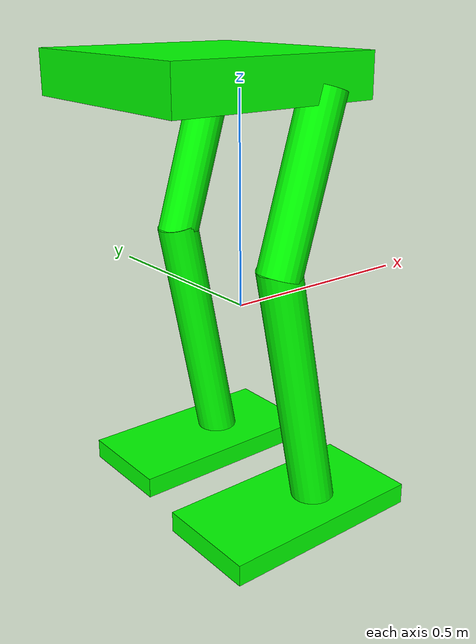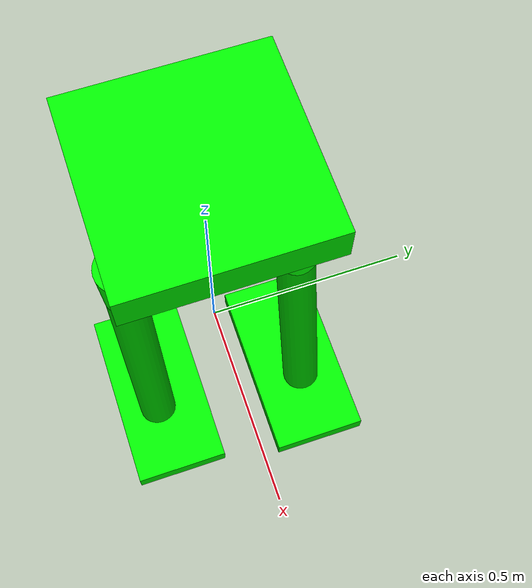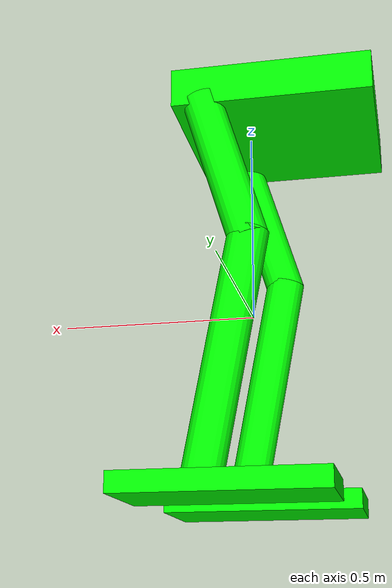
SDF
<?xml version='1.0'?>
<sdf version='1.7'>
  <model name='HumanoidRobot'>
    <link name='link_0'>
      <inertial>
        <mass>1</mass>
        <inertia>
          <ixx>0.166667</ixx>
          <ixy>0</ixy>
          <ixz>0</ixz>
          <iyy>0.166667</iyy>
          <iyz>0</iyz>
          <izz>0.166667</izz>
        </inertia>
        <pose>0 0 0 0 -0 0</pose>
      </inertial>
      <pose>-0.088426 0.010705 0.536121 0 -0 0</pose>
      <gravity>1</gravity>
      <self_collide>0</self_collide>
      <kinematic>0</kinematic>
      <enable_wind>0</enable_wind>
      <visual name='visual'>
        <pose>0 0 0 0 -0 0</pose>
        <geometry>
          <box>
            <size>0.5 0.5 0.1</size>
          </box>
        </geometry>
        <material>
          <lighting>1</lighting>
          <script>
            <uri>file://media/materials/scripts/gazebo.material</uri>
            <name>Gazebo/Grey</name>
          </script>
          <shader type='pixel'>
            <normal_map>__default__</normal_map>
          </shader>
          <ambient>0 1 0 1</ambient>
          <diffuse>0.7 0.7 0.7 1</diffuse>
          <specular>0.01 0.01 0.01 1</specular>
          <emissive>0 0 0 1</emissive>
        </material>
        <transparency>0</transparency>
        <cast_shadows>1</cast_shadows>
      </visual>
      <collision name='collision'>
        <laser_retro>0</laser_retro>
        <max_contacts>10</max_contacts>
        <pose>0 0 0 0 -0 0</pose>
        <geometry>
          <box>
            <size>0.5 0.5 0.1</size>
          </box>
        </geometry>
        <surface>
          <friction>
            <ode>
              <mu>1</mu>
              <mu2>1</mu2>
              <fdir1>0 0 0</fdir1>
              <slip1>0</slip1>
              <slip2>0</slip2>
            </ode>
            <torsional>
              <coefficient>1</coefficient>
              <patch_radius>0</patch_radius>
              <surface_radius>0</surface_radius>
              <use_patch_radius>1</use_patch_radius>
              <ode>
                <slip>0</slip>
              </ode>
            </torsional>
          </friction>
          <bounce>
            <restitution_coefficient>0</restitution_coefficient>
            <threshold>1e+06</threshold>
          </bounce>
          <contact>
            <collide_without_contact>0</collide_without_contact>
            <collide_without_contact_bitmask>1</collide_without_contact_bitmask>
            <collide_bitmask>1</collide_bitmask>
            <ode>
              <soft_cfm>0</soft_cfm>
              <soft_erp>0.2</soft_erp>
              <kp>1e+13</kp>
              <kd>1</kd>
              <max_vel>0.01</max_vel>
              <min_depth>0</min_depth>
            </ode>
            <bullet>
              <split_impulse>1</split_impulse>
              <split_impulse_penetration_threshold>-0.01</split_impulse_penetration_threshold>
              <soft_cfm>0</soft_cfm>
              <soft_erp>0.2</soft_erp>
              <kp>1e+13</kp>
              <kd>1</kd>
            </bullet>
          </contact>
        </surface>
      </collision>
    </link>
    <link name='link_1'>
      <inertial>
        <mass>1</mass>
        <inertia>
          <ixx>0.166667</ixx>
          <ixy>0</ixy>
          <ixz>0</ixz>
          <iyy>0.166667</iyy>
          <iyz>0</iyz>
          <izz>0.166667</izz>
        </inertia>
        <pose>0 0 0 0 -0 0</pose>
      </inertial>
      <pose>-0.002836 -0.189031 -0.453961 0 -0 0</pose>
      <gravity>1</gravity>
      <self_collide>0</self_collide>
      <kinematic>0</kinematic>
      <enable_wind>0</enable_wind>
      <visual name='visual'>
        <pose>0 0 0 0 -0 0</pose>
        <geometry>
          <box>
            <size>0.5 0.25 0.05</size>
          </box>
        </geometry>
        <material>
          <lighting>1</lighting>
          <script>
            <uri>file://media/materials/scripts/gazebo.material</uri>
            <name>Gazebo/Grey</name>
          </script>
          <shader type='pixel'>
            <normal_map>__default__</normal_map>
          </shader>
          <ambient>0 1 0 1</ambient>
          <diffuse>0.7 0.7 0.7 1</diffuse>
          <specular>0.01 0.01 0.01 1</specular>
          <emissive>0 0 0 1</emissive>
        </material>
        <transparency>0</transparency>
        <cast_shadows>1</cast_shadows>
      </visual>
      <collision name='collision'>
        <laser_retro>0</laser_retro>
        <max_contacts>10</max_contacts>
        <pose>0 0 0 0 -0 0</pose>
        <geometry>
          <box>
            <size>0.5 0.25 0.05</size>
          </box>
        </geometry>
        <surface>
          <friction>
            <ode>
              <mu>1</mu>
              <mu2>1</mu2>
              <fdir1>0 0 0</fdir1>
              <slip1>0</slip1>
              <slip2>0</slip2>
            </ode>
            <torsional>
              <coefficient>1</coefficient>
              <patch_radius>0</patch_radius>
              <surface_radius>0</surface_radius>
              <use_patch_radius>1</use_patch_radius>
              <ode>
                <slip>0</slip>
              </ode>
            </torsional>
          </friction>
          <bounce>
            <restitution_coefficient>0</restitution_coefficient>
            <threshold>1e+06</threshold>
          </bounce>
          <contact>
            <collide_without_contact>0</collide_without_contact>
            <collide_without_contact_bitmask>1</collide_without_contact_bitmask>
            <collide_bitmask>1</collide_bitmask>
            <ode>
              <soft_cfm>0</soft_cfm>
              <soft_erp>0.2</soft_erp>
              <kp>1e+13</kp>
              <kd>1</kd>
              <max_vel>0.01</max_vel>
              <min_depth>0</min_depth>
            </ode>
            <bullet>
              <split_impulse>1</split_impulse>
              <split_impulse_penetration_threshold>-0.01</split_impulse_penetration_threshold>
              <soft_cfm>0</soft_cfm>
              <soft_erp>0.2</soft_erp>
              <kp>1e+13</kp>
              <kd>1</kd>
            </bullet>
          </contact>
        </surface>
      </collision>
    </link>
    <link name='link_1_clone'>
      <inertial>
        <mass>1</mass>
        <inertia>
          <ixx>0.166667</ixx>
          <ixy>0</ixy>
          <ixz>0</ixz>
          <iyy>0.166667</iyy>
          <iyz>0</iyz>
          <izz>0.166667</izz>
        </inertia>
        <pose>0 0 0 0 -0 0</pose>
      </inertial>
      <pose>0.031524 0.211991 -0.453961 0 -0 0</pose>
      <gravity>1</gravity>
      <self_collide>0</self_collide>
      <kinematic>0</kinematic>
      <enable_wind>0</enable_wind>
      <visual name='visual'>
        <pose>0 0 0 0 -0 0</pose>
        <geometry>
          <box>
            <size>0.5 0.25 0.05</size>
          </box>
        </geometry>
        <material>
          <lighting>1</lighting>
          <script>
            <uri>file://media/materials/scripts/gazebo.material</uri>
            <name>Gazebo/Grey</name>
          </script>
          <shader type='pixel'>
            <normal_map>__default__</normal_map>
          </shader>
          <ambient>0 1 0 1</ambient>
          <diffuse>0.7 0.7 0.7 1</diffuse>
          <specular>0.01 0.01 0.01 1</specular>
          <emissive>0 0 0 1</emissive>
        </material>
        <transparency>0</transparency>
        <cast_shadows>1</cast_shadows>
      </visual>
      <collision name='collision'>
        <laser_retro>0</laser_retro>
        <max_contacts>10</max_contacts>
        <pose>0 0 0 0 -0 0</pose>
        <geometry>
          <box>
            <size>0.5 0.25 0.05</size>
          </box>
        </geometry>
        <surface>
          <friction>
            <ode>
              <mu>1</mu>
              <mu2>1</mu2>
              <fdir1>0 0 0</fdir1>
              <slip1>0</slip1>
              <slip2>0</slip2>
            </ode>
            <torsional>
              <coefficient>1</coefficient>
              <patch_radius>0</patch_radius>
              <surface_radius>0</surface_radius>
              <use_patch_radius>1</use_patch_radius>
              <ode>
                <slip>0</slip>
              </ode>
            </torsional>
          </friction>
          <bounce>
            <restitution_coefficient>0</restitution_coefficient>
            <threshold>1e+06</threshold>
          </bounce>
          <contact>
            <collide_without_contact>0</collide_without_contact>
            <collide_without_contact_bitmask>1</collide_without_contact_bitmask>
            <collide_bitmask>1</collide_bitmask>
            <ode>
              <soft_cfm>0</soft_cfm>
              <soft_erp>0.2</soft_erp>
              <kp>1e+13</kp>
              <kd>1</kd>
              <max_vel>0.01</max_vel>
              <min_depth>0</min_depth>
            </ode>
            <bullet>
              <split_impulse>1</split_impulse>
              <split_impulse_penetration_threshold>-0.01</split_impulse_penetration_threshold>
              <soft_cfm>0</soft_cfm>
              <soft_erp>0.2</soft_erp>
              <kp>1e+13</kp>
              <kd>1</kd>
            </bullet>
          </contact>
        </surface>
      </collision>
    </link>
    <link name='link_2'>
      <inertial>
        <mass>1</mass>
        <inertia>
          <ixx>0.145833</ixx>
          <ixy>0</ixy>
          <ixz>0</ixz>
          <iyy>0.145833</iyy>
          <iyz>0</iyz>
          <izz>0.125</izz>
        </inertia>
        <pose>0 0 0 0 -0 0</pose>
      </inertial>
      <pose>-0.002516 -0.205584 0.325243 0 0.295116 0</pose>
      <gravity>1</gravity>
      <self_collide>0</self_collide>
      <kinematic>0</kinematic>
      <enable_wind>0</enable_wind>
      <visual name='visual'>
        <pose>0 0 0 0 -0 0</pose>
        <geometry>
          <cylinder>
            <radius>0.05</radius>
            <length>0.4</length>
          </cylinder>
        </geometry>
        <material>
          <lighting>1</lighting>
          <script>
            <uri>file://media/materials/scripts/gazebo.material</uri>
            <name>Gazebo/Grey</name>
          </script>
          <shader type='pixel'>
            <normal_map>__default__</normal_map>
          </shader>
          <ambient>0 1 0 1</ambient>
          <diffuse>0.7 0.7 0.7 1</diffuse>
          <specular>0.01 0.01 0.01 1</specular>
          <emissive>0 0 0 1</emissive>
        </material>
        <transparency>0</transparency>
        <cast_shadows>1</cast_shadows>
      </visual>
      <collision name='collision'>
        <laser_retro>0</laser_retro>
        <max_contacts>10</max_contacts>
        <pose>0 0 0 0 -0 0</pose>
        <geometry>
          <cylinder>
            <radius>0.05</radius>
            <length>0.4</length>
          </cylinder>
        </geometry>
        <surface>
          <friction>
            <ode>
              <mu>1</mu>
              <mu2>1</mu2>
              <fdir1>0 0 0</fdir1>
              <slip1>0</slip1>
              <slip2>0</slip2>
            </ode>
            <torsional>
              <coefficient>1</coefficient>
              <patch_radius>0</patch_radius>
              <surface_radius>0</surface_radius>
              <use_patch_radius>1</use_patch_radius>
              <ode>
                <slip>0</slip>
              </ode>
            </torsional>
          </friction>
          <bounce>
            <restitution_coefficient>0</restitution_coefficient>
            <threshold>1e+06</threshold>
          </bounce>
          <contact>
            <collide_without_contact>0</collide_without_contact>
            <collide_without_contact_bitmask>1</collide_without_contact_bitmask>
            <collide_bitmask>1</collide_bitmask>
            <ode>
              <soft_cfm>0</soft_cfm>
              <soft_erp>0.2</soft_erp>
              <kp>1e+13</kp>
              <kd>1</kd>
              <max_vel>0.01</max_vel>
              <min_depth>0</min_depth>
            </ode>
            <bullet>
              <split_impulse>1</split_impulse>
              <split_impulse_penetration_threshold>-0.01</split_impulse_penetration_threshold>
              <soft_cfm>0</soft_cfm>
              <soft_erp>0.2</soft_erp>
              <kp>1e+13</kp>
              <kd>1</kd>
            </bullet>
          </contact>
        </surface>
      </collision>
    </link>
    <link name='link_2_clone_0'>
      <inertial>
        <mass>1</mass>
        <inertia>
          <ixx>0.145833</ixx>
          <ixy>0</ixy>
          <ixz>0</ixz>
          <iyy>0.145833</iyy>
          <iyz>0</iyz>
          <izz>0.125</izz>
        </inertia>
        <pose>0 0 0 0 -0 0</pose>
      </inertial>
      <pose>0.033564 0.221349 0.325243 0 0.295116 0</pose>
      <gravity>1</gravity>
      <self_collide>0</self_collide>
      <kinematic>0</kinematic>
      <enable_wind>0</enable_wind>
      <visual name='visual'>
        <pose>0 0 0 0 -0 0</pose>
        <geometry>
          <cylinder>
            <radius>0.05</radius>
            <length>0.4</length>
          </cylinder>
        </geometry>
        <material>
          <lighting>1</lighting>
          <script>
            <uri>file://media/materials/scripts/gazebo.material</uri>
            <name>Gazebo/Grey</name>
          </script>
          <shader type='pixel'>
            <normal_map>__default__</normal_map>
          </shader>
          <ambient>0 1 0 1</ambient>
          <diffuse>0.7 0.7 0.7 1</diffuse>
          <specular>0.01 0.01 0.01 1</specular>
          <emissive>0 0 0 1</emissive>
        </material>
        <transparency>0</transparency>
        <cast_shadows>1</cast_shadows>
      </visual>
      <collision name='collision'>
        <laser_retro>0</laser_retro>
        <max_contacts>10</max_contacts>
        <pose>0 0 0 0 -0 0</pose>
        <geometry>
          <cylinder>
            <radius>0.05</radius>
            <length>0.4</length>
          </cylinder>
        </geometry>
        <surface>
          <friction>
            <ode>
              <mu>1</mu>
              <mu2>1</mu2>
              <fdir1>0 0 0</fdir1>
              <slip1>0</slip1>
              <slip2>0</slip2>
            </ode>
            <torsional>
              <coefficient>1</coefficient>
              <patch_radius>0</patch_radius>
              <surface_radius>0</surface_radius>
              <use_patch_radius>1</use_patch_radius>
              <ode>
                <slip>0</slip>
              </ode>
            </torsional>
          </friction>
          <bounce>
            <restitution_coefficient>0</restitution_coefficient>
            <threshold>1e+06</threshold>
          </bounce>
          <contact>
            <collide_without_contact>0</collide_without_contact>
            <collide_without_contact_bitmask>1</collide_without_contact_bitmask>
            <collide_bitmask>1</collide_bitmask>
            <ode>
              <soft_cfm>0</soft_cfm>
              <soft_erp>0.2</soft_erp>
              <kp>1e+13</kp>
              <kd>1</kd>
              <max_vel>0.01</max_vel>
              <min_depth>0</min_depth>
            </ode>
            <bullet>
              <split_impulse>1</split_impulse>
              <split_impulse_penetration_threshold>-0.01</split_impulse_penetration_threshold>
              <soft_cfm>0</soft_cfm>
              <soft_erp>0.2</soft_erp>
              <kp>1e+13</kp>
              <kd>1</kd>
            </bullet>
          </contact>
        </surface>
      </collision>
    </link>
    <link name='link_2_clone_clone'>
      <inertial>
        <mass>1</mass>
        <inertia>
          <ixx>0.145833</ixx>
          <ixy>0</ixy>
          <ixz>0</ixz>
          <iyy>0.145833</iyy>
          <iyz>0</iyz>
          <izz>0.125</izz>
        </inertia>
        <pose>0 0 0 0 -0 0</pose>
      </inertial>
      <pose>-0.002836 -0.203823 -0.139342 0 -0.190908 0</pose>
      <gravity>1</gravity>
      <self_collide>0</self_collide>
      <kinematic>0</kinematic>
      <enable_wind>0</enable_wind>
      <visual name='visual'>
        <pose>0 0 0 0 -0 0</pose>
        <geometry>
          <cylinder>
            <radius>0.05</radius>
            <length>0.6</length>
          </cylinder>
        </geometry>
        <material>
          <lighting>1</lighting>
          <script>
            <uri>file://media/materials/scripts/gazebo.material</uri>
            <name>Gazebo/Grey</name>
          </script>
          <shader type='pixel'>
            <normal_map>__default__</normal_map>
          </shader>
          <ambient>0 1 0 1</ambient>
          <diffuse>0.7 0.7 0.7 1</diffuse>
          <specular>0.01 0.01 0.01 1</specular>
          <emissive>0 0 0 1</emissive>
        </material>
        <transparency>0</transparency>
        <cast_shadows>1</cast_shadows>
      </visual>
      <collision name='collision'>
        <laser_retro>0</laser_retro>
        <max_contacts>10</max_contacts>
        <pose>0 0 0 0 -0 0</pose>
        <geometry>
          <cylinder>
            <radius>0.05</radius>
            <length>0.6</length>
          </cylinder>
        </geometry>
        <surface>
          <friction>
            <ode>
              <mu>1</mu>
              <mu2>1</mu2>
              <fdir1>0 0 0</fdir1>
              <slip1>0</slip1>
              <slip2>0</slip2>
            </ode>
            <torsional>
              <coefficient>1</coefficient>
              <patch_radius>0</patch_radius>
              <surface_radius>0</surface_radius>
              <use_patch_radius>1</use_patch_radius>
              <ode>
                <slip>0</slip>
              </ode>
            </torsional>
          </friction>
          <bounce>
            <restitution_coefficient>0</restitution_coefficient>
            <threshold>1e+06</threshold>
          </bounce>
          <contact>
            <collide_without_contact>0</collide_without_contact>
            <collide_without_contact_bitmask>1</collide_without_contact_bitmask>
            <collide_bitmask>1</collide_bitmask>
            <ode>
              <soft_cfm>0</soft_cfm>
              <soft_erp>0.2</soft_erp>
              <kp>1e+13</kp>
              <kd>1</kd>
              <max_vel>0.01</max_vel>
              <min_depth>0</min_depth>
            </ode>
            <bullet>
              <split_impulse>1</split_impulse>
              <split_impulse_penetration_threshold>-0.01</split_impulse_penetration_threshold>
              <soft_cfm>0</soft_cfm>
              <soft_erp>0.2</soft_erp>
              <kp>1e+13</kp>
              <kd>1</kd>
            </bullet>
          </contact>
        </surface>
      </collision>
    </link>
    <link name='link_2_clone_clone_clone'>
      <inertial>
        <mass>1</mass>
        <inertia>
          <ixx>0.145833</ixx>
          <ixy>0</ixy>
          <ixz>0</ixz>
          <iyy>0.145833</iyy>
          <iyz>0</iyz>
          <izz>0.125</izz>
        </inertia>
        <pose>0 0 0 0 -0 0</pose>
      </inertial>
      <pose>0.031524 0.2206 -0.139342 0 -0.190908 0</pose>
      <gravity>1</gravity>
      <self_collide>0</self_collide>
      <kinematic>0</kinematic>
      <enable_wind>0</enable_wind>
      <visual name='visual'>
        <pose>0 0 0 0 -0 0</pose>
        <geometry>
          <cylinder>
            <radius>0.05</radius>
            <length>0.6</length>
          </cylinder>
        </geometry>
        <material>
          <lighting>1</lighting>
          <script>
            <uri>file://media/materials/scripts/gazebo.material</uri>
            <name>Gazebo/Grey</name>
          </script>
          <shader type='pixel'>
            <normal_map>__default__</normal_map>
          </shader>
          <ambient>0 1 0 1</ambient>
          <diffuse>0.7 0.7 0.7 1</diffuse>
          <specular>0.01 0.01 0.01 1</specular>
          <emissive>0 0 0 1</emissive>
        </material>
        <transparency>0</transparency>
        <cast_shadows>1</cast_shadows>
      </visual>
      <collision name='collision'>
        <laser_retro>0</laser_retro>
        <max_contacts>10</max_contacts>
        <pose>0 0 0 0 -0 0</pose>
        <geometry>
          <cylinder>
            <radius>0.05</radius>
            <length>0.6</length>
          </cylinder>
        </geometry>
        <surface>
          <friction>
            <ode>
              <mu>1</mu>
              <mu2>1</mu2>
              <fdir1>0 0 0</fdir1>
              <slip1>0</slip1>
              <slip2>0</slip2>
            </ode>
            <torsional>
              <coefficient>1</coefficient>
              <patch_radius>0</patch_radius>
              <surface_radius>0</surface_radius>
              <use_patch_radius>1</use_patch_radius>
              <ode>
                <slip>0</slip>
              </ode>
            </torsional>
          </friction>
          <bounce>
            <restitution_coefficient>0</restitution_coefficient>
            <threshold>1e+06</threshold>
          </bounce>
          <contact>
            <collide_without_contact>0</collide_without_contact>
            <collide_without_contact_bitmask>1</collide_without_contact_bitmask>
            <collide_bitmask>1</collide_bitmask>
            <ode>
              <soft_cfm>0</soft_cfm>
              <soft_erp>0.2</soft_erp>
              <kp>1e+13</kp>
              <kd>1</kd>
              <max_vel>0.01</max_vel>
              <min_depth>0</min_depth>
            </ode>
            <bullet>
              <split_impulse>1</split_impulse>
              <split_impulse_penetration_threshold>-0.01</split_impulse_penetration_threshold>
              <soft_cfm>0</soft_cfm>
              <soft_erp>0.2</soft_erp>
              <kp>1e+13</kp>
              <kd>1</kd>
            </bullet>
          </contact>
        </surface>
      </collision>
    </link>
    <joint name='link_0_JOINT_0' type='revolute'>
      <parent>link_0</parent>
      <child>link_2</child>
      <pose>0 0 0 0 -0 0</pose>
      <axis>
        <xyz>0 0 1</xyz>
        <limit>
          <lower>-1.79769e+308</lower>
          <upper>1.79769e+308</upper>
          <effort>-1</effort>
          <velocity>-1</velocity>
        </limit>
        <dynamics>
          <spring_reference>0</spring_reference>
          <spring_stiffness>0</spring_stiffness>
          <damping>0</damping>
          <friction>0</friction>
        </dynamics>
      </axis>
      <physics>
        <ode>
          <limit>
            <cfm>0</cfm>
            <erp>0.2</erp>
          </limit>
          <suspension>
            <cfm>0</cfm>
            <erp>0.2</erp>
          </suspension>
        </ode>
      </physics>
    </joint>
    <joint name='link_0_JOINT_1' type='revolute'>
      <parent>link_0</parent>
      <child>link_2_clone_0</child>
      <pose>0 0 0 0 -0 0</pose>
      <axis>
        <xyz>0 0 1</xyz>
        <limit>
          <lower>-1.79769e+308</lower>
          <upper>1.79769e+308</upper>
          <effort>-1</effort>
          <velocity>-1</velocity>
        </limit>
        <dynamics>
          <spring_reference>0</spring_reference>
          <spring_stiffness>0</spring_stiffness>
          <damping>0</damping>
          <friction>0</friction>
        </dynamics>
      </axis>
      <physics>
        <ode>
          <limit>
            <cfm>0</cfm>
            <erp>0.2</erp>
          </limit>
          <suspension>
            <cfm>0</cfm>
            <erp>0.2</erp>
          </suspension>
        </ode>
      </physics>
    </joint>
    <joint name='link_2_JOINT_3' type='revolute'>
      <parent>link_2</parent>
      <child>link_2_clone_clone</child>
      <pose>0 0 0 0 -0 0</pose>
      <axis>
        <xyz>0 0 1</xyz>
        <limit>
          <lower>-1.79769e+308</lower>
          <upper>1.79769e+308</upper>
          <effort>-1</effort>
          <velocity>-1</velocity>
        </limit>
        <dynamics>
          <spring_reference>0</spring_reference>
          <spring_stiffness>0</spring_stiffness>
          <damping>0</damping>
          <friction>0</friction>
        </dynamics>
      </axis>
      <physics>
        <ode>
          <limit>
            <cfm>0</cfm>
            <erp>0.2</erp>
          </limit>
          <suspension>
            <cfm>0</cfm>
            <erp>0.2</erp>
          </suspension>
        </ode>
      </physics>
    </joint>
    <joint name='link_2_clone_0_JOINT_4' type='revolute'>
      <parent>link_2_clone_0</parent>
      <child>link_2_clone_clone_clone</child>
      <pose>0 0 0 0 -0 0</pose>
      <axis>
        <xyz>0 0 1</xyz>
        <limit>
          <lower>-1.79769e+308</lower>
          <upper>1.79769e+308</upper>
          <effort>-1</effort>
          <velocity>-1</velocity>
        </limit>
        <dynamics>
          <spring_reference>0</spring_reference>
          <spring_stiffness>0</spring_stiffness>
          <damping>0</damping>
          <friction>0</friction>
        </dynamics>
      </axis>
      <physics>
        <ode>
          <limit>
            <cfm>0</cfm>
            <erp>0.2</erp>
          </limit>
          <suspension>
            <cfm>0</cfm>
            <erp>0.2</erp>
          </suspension>
        </ode>
      </physics>
    </joint>
    <joint name='link_2_clone_clone_JOINT_5' type='revolute'>
      <parent>link_2_clone_clone</parent>
      <child>link_1</child>
      <pose>0 0 0 0 -0 0</pose>
      <axis>
        <xyz>0 0 1</xyz>
        <limit>
          <lower>-1.79769e+308</lower>
          <upper>1.79769e+308</upper>
          <effort>-1</effort>
          <velocity>-1</velocity>
        </limit>
        <dynamics>
          <spring_reference>0</spring_reference>
          <spring_stiffness>0</spring_stiffness>
          <damping>0</damping>
          <friction>0</friction>
        </dynamics>
      </axis>
      <physics>
        <ode>
          <limit>
            <cfm>0</cfm>
            <erp>0.2</erp>
          </limit>
          <suspension>
            <cfm>0</cfm>
            <erp>0.2</erp>
          </suspension>
        </ode>
      </physics>
    </joint>
    <joint name='link_2_clone_clone_clone_JOINT_6' type='revolute'>
      <parent>link_2_clone_clone_clone</parent>
      <child>link_1_clone</child>
      <pose>0 0 0 0 -0 0</pose>
      <axis>
        <xyz>0 0 1</xyz>
        <limit>
          <lower>-1.79769e+308</lower>
          <upper>1.79769e+308</upper>
          <effort>-1</effort>
          <velocity>-1</velocity>
        </limit>
        <dynamics>
          <spring_reference>0</spring_reference>
          <spring_stiffness>0</spring_stiffness>
          <damping>0</damping>
          <friction>0</friction>
        </dynamics>
      </axis>
      <physics>
        <ode>
          <limit>
            <cfm>0</cfm>
            <erp>0.2</erp>
          </limit>
          <suspension>
            <cfm>0</cfm>
            <erp>0.2</erp>
          </suspension>
        </ode>
      </physics>
    </joint>
    <static>0</static>
    <allow_auto_disable>1</allow_auto_disable>
  </model>
</sdf>
